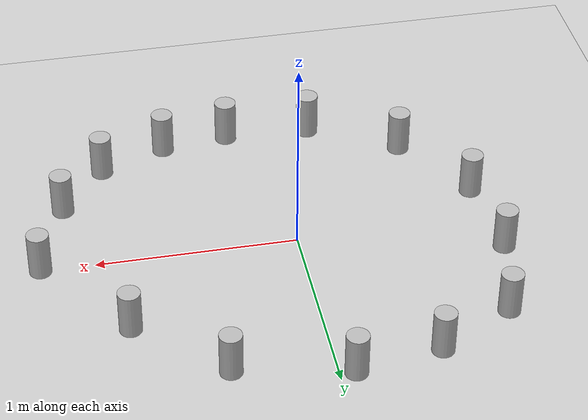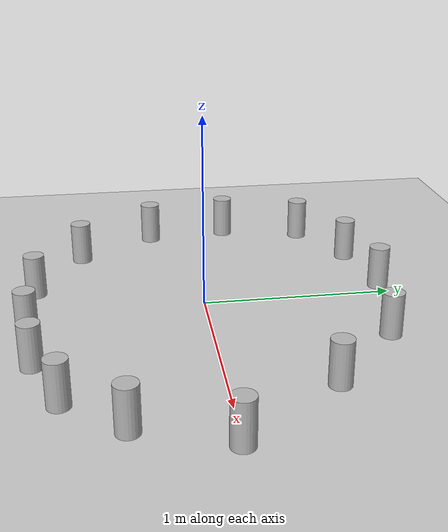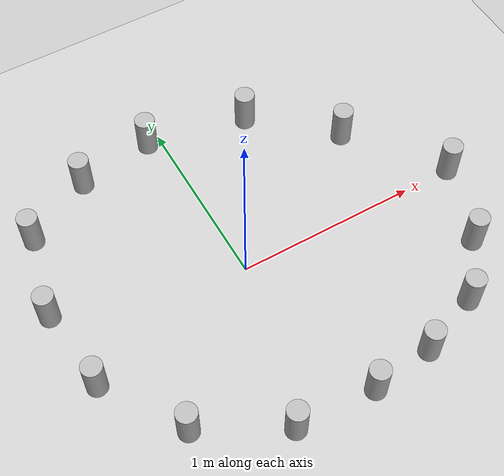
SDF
<sdf version="1.7">
 <world name="default">
  <light name="sun" type="directional">
   <pose>0 0 10 0 -0 0</pose>
   <diffuse>0.8 0.8 0.8 1</diffuse>
   <specular>0.2 0.2 0.2 1</specular>
   <attenuation>
    <range>1000</range>
    <constant>0.9</constant>
    <linear>0.01</linear>
    <quadratic>0.001</quadratic>
   </attenuation>
   <direction>-0.5 0.1 -0.9</direction>
   <spot><inner_angle>0</inner_angle><outer_angle>0</outer_angle><falloff>0</falloff></spot>
  </light>
  <model name="ground_plane">
   <static>1</static>
   <link name="link">
    <collision name="collision">
     <geometry><plane><normal>0 0 1</normal><size>100 100</size></plane></geometry>
     <surface>
      <contact><collide_bitmask>65535</collide_bitmask></contact>
      <friction><ode><mu>100</mu><mu2>50</mu2></ode></friction>
     </surface>
    </collision>
    <visual name="visual">
     <cast_shadows>0</cast_shadows>
     <geometry><plane><normal>0 0 1</normal><size>100 100</size></plane></geometry>
     <material>
      <script><uri>file://media/materials/scripts/gazebo.material</uri><name>Gazebo/Grey</name></script>
     </material>
    </visual>
   </link>
  </model>
  <gravity>0 0 -9.8</gravity>
  <magnetic_field>6e-06 2.3e-05 -4.2e-05</magnetic_field>
  <atmosphere type="adiabatic"/>
  <physics type="ode">
   <max_step_size>0.001</max_step_size>
   <real_time_factor>1</real_time_factor>
   <real_time_update_rate>1000</real_time_update_rate>
  </physics>
  <scene><ambient>0.4 0.4 0.4 1</ambient><background>0.7 0.7 0.7 1</background><shadows>1</shadows></scene>
  <audio><device>default</device></audio>
  <spherical_coordinates>
   <surface_model>EARTH_WGS84</surface_model>
   <latitude_deg>0</latitude_deg>
   <longitude_deg>0</longitude_deg>
   <elevation>0</elevation>
   <heading_deg>0</heading_deg>
  </spherical_coordinates>
  <model name="beer">
   <link name="link">
    <pose>0 0 0.115 0 -0 0</pose>
    <inertial>
     <mass>0.39</mass>
     <inertia><ixx>0.00058</ixx><ixy>0</ixy><ixz>0</ixz><iyy>0.00058</iyy><iyz>0</iyz><izz>0.00019</izz></inertia>
    </inertial>
    <collision name="collision">
     <geometry><cylinder><radius>0.055</radius><length>0.23</length></cylinder></geometry>
    </collision>
    <visual name="visual">
     <geometry><cylinder><radius>0.055</radius><length>0.23</length></cylinder></geometry>
     <material>
      <script>
       <uri>model://beer/materials/scripts</uri>
       <uri>model://beer/materials/textures</uri>
       <name>Beer/Diffuse</name>
      </script>
     </material>
    </visual>
   </link>
   <pose>1.2637 -0.0051 -7e-06 -1e-06 -0 -1.6e-05</pose>
  </model>
  <model name="beer_clone">
   <link name="link">
    <pose>0 0 0.115 0 -0 0</pose>
    <inertial>
     <mass>0.39</mass>
     <inertia><ixx>0.00058</ixx><ixy>0</ixy><ixz>0</ixz><iyy>0.00058</iyy><iyz>0</iyz><izz>0.00019</izz></inertia>
    </inertial>
    <collision name="collision">
     <geometry><cylinder><radius>0.055</radius><length>0.23</length></cylinder></geometry>
    </collision>
    <visual name="visual">
     <geometry><cylinder><radius>0.055</radius><length>0.23</length></cylinder></geometry>
     <material>
      <script>
       <uri>model://beer/materials/scripts</uri>
       <uri>model://beer/materials/textures</uri>
       <name>Beer/Diffuse</name>
      </script>
     </material>
    </visual>
   </link>
   <pose>1.11 -0.442982 -2e-06 1e-06 -0 -1.6e-05</pose>
  </model>
  <model name="beer_clone_0">
   <link name="link">
    <pose>0 0 0.115 0 -0 0</pose>
    <inertial>
     <mass>0.39</mass>
     <inertia><ixx>0.00058</ixx><ixy>0</ixy><ixz>0</ixz><iyy>0.00058</iyy><iyz>0</iyz><izz>0.00019</izz></inertia>
    </inertial>
    <collision name="collision">
     <geometry><cylinder><radius>0.055</radius><length>0.23</length></cylinder></geometry>
    </collision>
    <visual name="visual">
     <geometry><cylinder><radius>0.055</radius><length>0.23</length></cylinder></geometry>
     <material>
      <script>
       <uri>model://beer/materials/scripts</uri>
       <uri>model://beer/materials/textures</uri>
       <name>Beer/Diffuse</name>
      </script>
     </material>
    </visual>
   </link>
   <pose>0.879795 -0.721784 -7e-06 -1e-06 -0 -1.5e-05</pose>
  </model>
  <model name="beer_clone_1">
   <link name="link">
    <pose>0 0 0.115 0 -0 0</pose>
    <inertial>
     <mass>0.39</mass>
     <inertia><ixx>0.00058</ixx><ixy>0</ixy><ixz>0</ixz><iyy>0.00058</iyy><iyz>0</iyz><izz>0.00019</izz></inertia>
    </inertial>
    <collision name="collision">
     <geometry><cylinder><radius>0.055</radius><length>0.23</length></cylinder></geometry>
    </collision>
    <visual name="visual">
     <geometry><cylinder><radius>0.055</radius><length>0.23</length></cylinder></geometry>
     <material>
      <script>
       <uri>model://beer/materials/scripts</uri>
       <uri>model://beer/materials/textures</uri>
       <name>Beer/Diffuse</name>
      </script>
     </material>
    </visual>
   </link>
   <pose>0.54392 -0.853739 -2e-06 1e-06 -0 -1.4e-05</pose>
  </model>
  <model name="beer_clone_2">
   <link name="link">
    <pose>0 0 0.115 0 -0 0</pose>
    <inertial>
     <mass>0.39</mass>
     <inertia><ixx>0.00058</ixx><ixy>0</ixy><ixz>0</ixz><iyy>0.00058</iyy><iyz>0</iyz><izz>0.00019</izz></inertia>
    </inertial>
    <collision name="collision">
     <geometry><cylinder><radius>0.055</radius><length>0.23</length></cylinder></geometry>
    </collision>
    <visual name="visual">
     <geometry><cylinder><radius>0.055</radius><length>0.23</length></cylinder></geometry>
     <material>
      <script>
       <uri>model://beer/materials/scripts</uri>
       <uri>model://beer/materials/textures</uri>
       <name>Beer/Diffuse</name>
      </script>
     </material>
    </visual>
   </link>
   <pose>0.204465 -0.896038 -2e-06 1e-06 -0 -1.3e-05</pose>
  </model>
  <model name="beer_clone_3">
   <link name="link">
    <pose>0 0 0.115 0 -0 0</pose>
    <inertial>
     <mass>0.39</mass>
     <inertia><ixx>0.00058</ixx><ixy>0</ixy><ixz>0</ixz><iyy>0.00058</iyy><iyz>0</iyz><izz>0.00019</izz></inertia>
    </inertial>
    <collision name="collision">
     <geometry><cylinder><radius>0.055</radius><length>0.23</length></cylinder></geometry>
    </collision>
    <visual name="visual">
     <geometry><cylinder><radius>0.055</radius><length>0.23</length></cylinder></geometry>
     <material>
      <script>
       <uri>model://beer/materials/scripts</uri>
       <uri>model://beer/materials/textures</uri>
       <name>Beer/Diffuse</name>
      </script>
     </material>
    </visual>
   </link>
   <pose>-0.228819 -0.877533 -2e-06 1e-06 0 -1.2e-05</pose>
  </model>
  <model name="beer_clone_4">
   <link name="link">
    <pose>0 0 0.115 0 -0 0</pose>
    <inertial>
     <mass>0.39</mass>
     <inertia><ixx>0.00058</ixx><ixy>0</ixy><ixz>0</ixz><iyy>0.00058</iyy><iyz>0</iyz><izz>0.00019</izz></inertia>
    </inertial>
    <collision name="collision">
     <geometry><cylinder><radius>0.055</radius><length>0.23</length></cylinder></geometry>
    </collision>
    <visual name="visual">
     <geometry><cylinder><radius>0.055</radius><length>0.23</length></cylinder></geometry>
     <material>
      <script>
       <uri>model://beer/materials/scripts</uri>
       <uri>model://beer/materials/textures</uri>
       <name>Beer/Diffuse</name>
      </script>
     </material>
    </visual>
   </link>
   <pose>-0.667765 -0.637538 -2e-06 1e-06 0 -1.2e-05</pose>
  </model>
  <model name="beer_clone_5">
   <link name="link">
    <pose>0 0 0.115 0 -0 0</pose>
    <inertial>
     <mass>0.39</mass>
     <inertia><ixx>0.00058</ixx><ixy>0</ixy><ixz>0</ixz><iyy>0.00058</iyy><iyz>0</iyz><izz>0.00019</izz></inertia>
    </inertial>
    <collision name="collision">
     <geometry><cylinder><radius>0.055</radius><length>0.23</length></cylinder></geometry>
    </collision>
    <visual name="visual">
     <geometry><cylinder><radius>0.055</radius><length>0.23</length></cylinder></geometry>
     <material>
      <script>
       <uri>model://beer/materials/scripts</uri>
       <uri>model://beer/materials/textures</uri>
       <name>Beer/Diffuse</name>
      </script>
     </material>
    </visual>
   </link>
   <pose>-0.94112 -0.218482 -7e-06 -0 -0 -1.1e-05</pose>
  </model>
  <model name="beer_clone_6">
   <link name="link">
    <pose>0 0 0.115 0 -0 0</pose>
    <inertial>
     <mass>0.39</mass>
     <inertia><ixx>0.00058</ixx><ixy>0</ixy><ixz>0</ixz><iyy>0.00058</iyy><iyz>0</iyz><izz>0.00019</izz></inertia>
    </inertial>
    <collision name="collision">
     <geometry><cylinder><radius>0.055</radius><length>0.23</length></cylinder></geometry>
    </collision>
    <visual name="visual">
     <geometry><cylinder><radius>0.055</radius><length>0.23</length></cylinder></geometry>
     <material>
      <script>
       <uri>model://beer/materials/scripts</uri>
       <uri>model://beer/materials/textures</uri>
       <name>Beer/Diffuse</name>
      </script>
     </material>
    </visual>
   </link>
   <pose>-0.987237 0.238038 -7e-06 -1e-06 0 -1.1e-05</pose>
  </model>
  <model name="beer_clone_7">
   <link name="link">
    <pose>0 0 0.115 0 -0 0</pose>
    <inertial>
     <mass>0.39</mass>
     <inertia><ixx>0.00058</ixx><ixy>0</ixy><ixz>0</ixz><iyy>0.00058</iyy><iyz>0</iyz><izz>0.00019</izz></inertia>
    </inertial>
    <collision name="collision">
     <geometry><cylinder><radius>0.055</radius><length>0.23</length></cylinder></geometry>
    </collision>
    <visual name="visual">
     <geometry><cylinder><radius>0.055</radius><length>0.23</length></cylinder></geometry>
     <material>
      <script>
       <uri>model://beer/materials/scripts</uri>
       <uri>model://beer/materials/textures</uri>
       <name>Beer/Diffuse</name>
      </script>
     </material>
    </visual>
   </link>
   <pose>-0.876816 0.695399 -2e-06 1e-06 -0 -1e-05</pose>
  </model>
  <model name="beer_clone_8">
   <link name="link">
    <pose>0 0 0.115 0 -0 0</pose>
    <inertial>
     <mass>0.39</mass>
     <inertia><ixx>0.00058</ixx><ixy>0</ixy><ixz>0</ixz><iyy>0.00058</iyy><iyz>0</iyz><izz>0.00019</izz></inertia>
    </inertial>
    <collision name="collision">
     <geometry><cylinder><radius>0.055</radius><length>0.23</length></cylinder></geometry>
    </collision>
    <visual name="visual">
     <geometry><cylinder><radius>0.055</radius><length>0.23</length></cylinder></geometry>
     <material>
      <script>
       <uri>model://beer/materials/scripts</uri>
       <uri>model://beer/materials/textures</uri>
       <name>Beer/Diffuse</name>
      </script>
     </material>
    </visual>
   </link>
   <pose>-0.501236 0.897175 -7e-06 -1e-06 -0 -9e-06</pose>
  </model>
  <model name="beer_clone_9">
   <link name="link">
    <pose>0 0 0.115 0 -0 0</pose>
    <inertial>
     <mass>0.39</mass>
     <inertia><ixx>0.00058</ixx><ixy>0</ixy><ixz>0</ixz><iyy>0.00058</iyy><iyz>0</iyz><izz>0.00019</izz></inertia>
    </inertial>
    <collision name="collision">
     <geometry><cylinder><radius>0.055</radius><length>0.23</length></cylinder></geometry>
    </collision>
    <visual name="visual">
     <geometry><cylinder><radius>0.055</radius><length>0.23</length></cylinder></geometry>
     <material>
      <script>
       <uri>model://beer/materials/scripts</uri>
       <uri>model://beer/materials/textures</uri>
       <name>Beer/Diffuse</name>
      </script>
     </material>
    </visual>
   </link>
   <pose>-0.077095 0.967898 -2e-06 1e-06 -0 -9e-06</pose>
  </model>
  <model name="beer_clone_10">
   <link name="link">
    <pose>0 0 0.115 0 -0 0</pose>
    <inertial>
     <mass>0.39</mass>
     <inertia><ixx>0.00058</ixx><ixy>0</ixy><ixz>0</ixz><iyy>0.00058</iyy><iyz>0</iyz><izz>0.00019</izz></inertia>
    </inertial>
    <collision name="collision">
     <geometry><cylinder><radius>0.055</radius><length>0.23</length></cylinder></geometry>
    </collision>
    <visual name="visual">
     <geometry><cylinder><radius>0.055</radius><length>0.23</length></cylinder></geometry>
     <material>
      <script>
       <uri>model://beer/materials/scripts</uri>
       <uri>model://beer/materials/textures</uri>
       <name>Beer/Diffuse</name>
      </script>
     </material>
    </visual>
   </link>
   <pose>0.480036 0.855406 -2e-06 1e-06 0 -8e-06</pose>
  </model>
  <model name="beer_clone_11">
   <link name="link">
    <pose>0 0 0.115 0 -0 0</pose>
    <inertial>
     <mass>0.39</mass>
     <inertia><ixx>0.00058</ixx><ixy>0</ixy><ixz>0</ixz><iyy>0.00058</iyy><iyz>0</iyz><izz>0.00019</izz></inertia>
    </inertial>
    <collision name="collision">
     <geometry><cylinder><radius>0.055</radius><length>0.23</length></cylinder></geometry>
    </collision>
    <visual name="visual">
     <geometry><cylinder><radius>0.055</radius><length>0.23</length></cylinder></geometry>
     <material>
      <script>
       <uri>model://beer/materials/scripts</uri>
       <uri>model://beer/materials/textures</uri>
       <name>Beer/Diffuse</name>
      </script>
     </material>
    </visual>
   </link>
   <pose>0.889592 0.488036 -7e-06 -1e-06 -0 -8e-06</pose>
  </model>
 </world>
</sdf>
